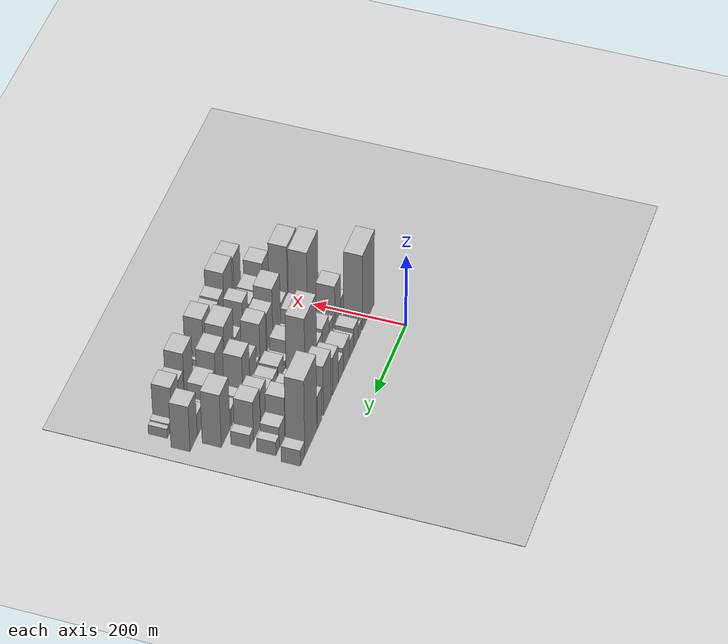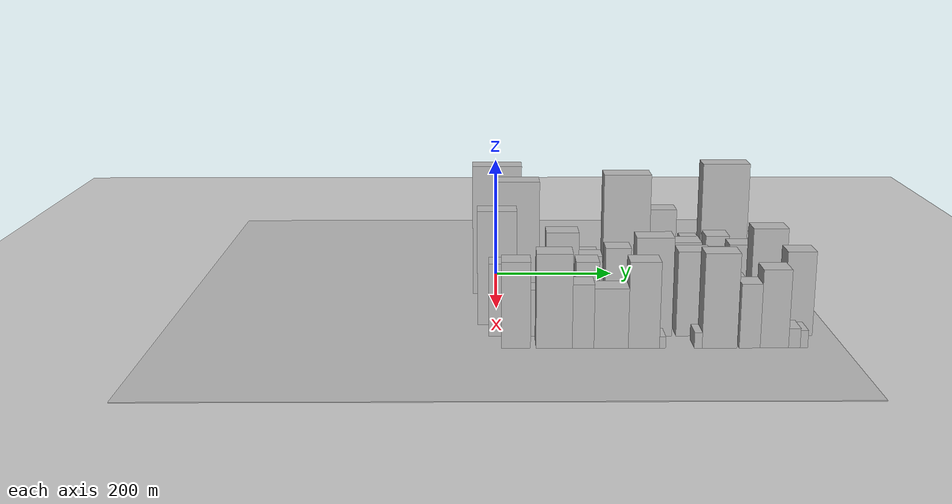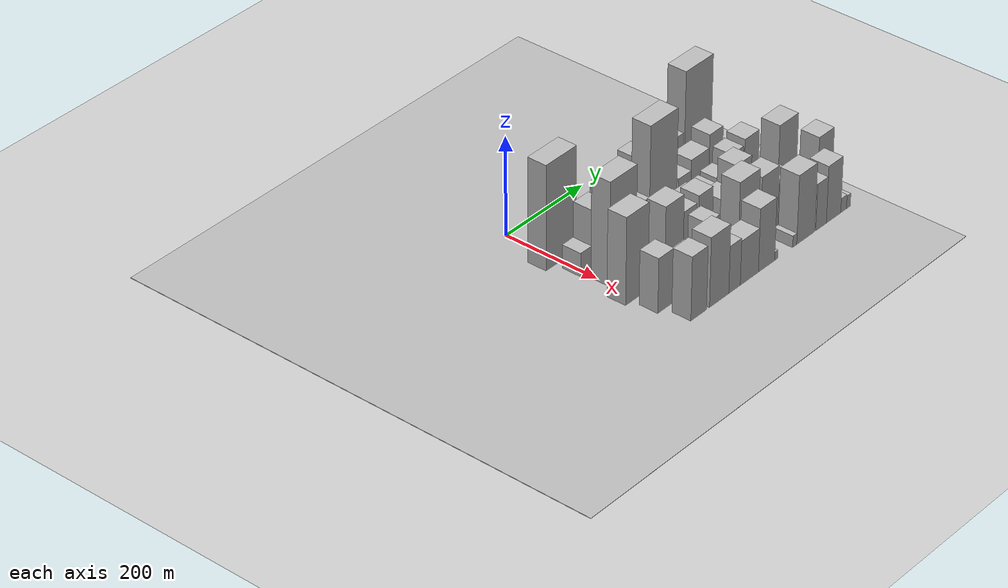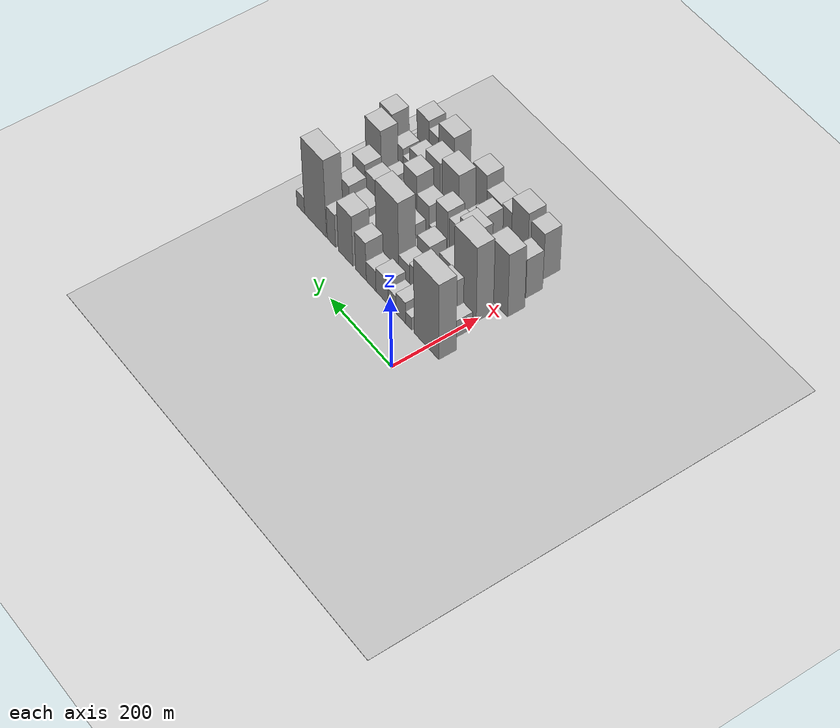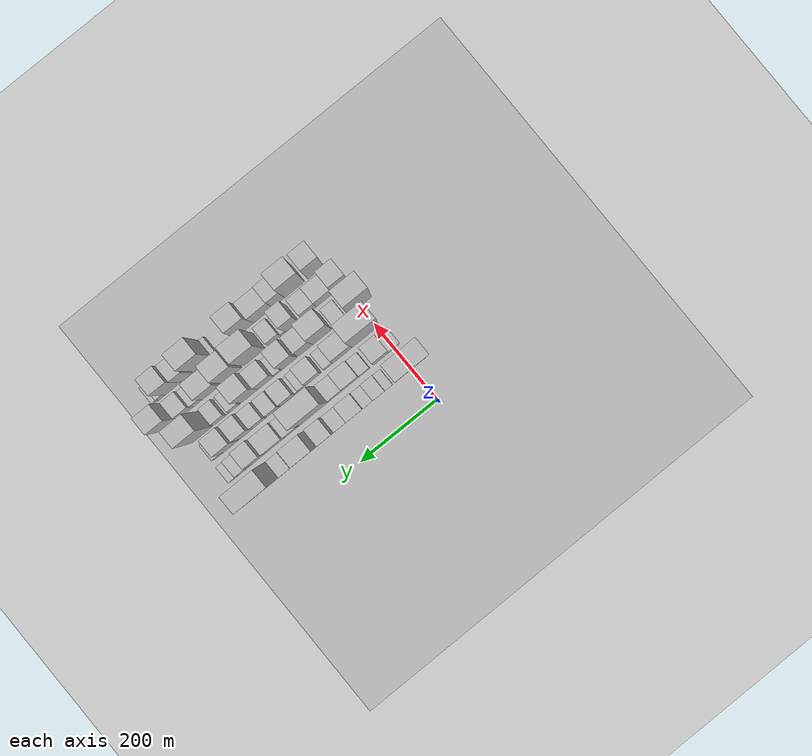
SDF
<sdf version="1.6">
 <world name="default">
  <include><name>ground_plane_1</name><uri>model://HANNAS_ground_plane</uri></include>
  <include>
   <name>ground_plane_2</name>
   <uri>model://HANNAS_ground_plane</uri>
   <pose>100 0 0  0 0 0</pose>
  </include>
  <model name="building_27">
   <static>1</static>
   <pose>100.0000 1.7411 0 0.000000 0.000000 0.000000</pose>
   <link name="link">
    <pose>0 0 106.50 0 0 0</pose>
    <collision name="collision"><geometry><box><size>40.0000 79.1890 213.0000</size></box></geometry></collision>
    <visual name="visual">
     <cast_shadows>0</cast_shadows>
     <geometry><box><size>40.0000 79.1890 213.0000</size></box></geometry>
     <material>
      <script>
       <uri>model://HANNAS_wall/materials/scripts</uri>
       <uri>model://HANNAS_wall/materials/textures</uri>
       <name>vrc/HANNAS_wall</name>
      </script>
     </material>
    </visual>
   </link>
  </model>
  <model name="building_28">
   <static>1</static>
   <pose>100.0000 59.1877 0 0.000000 0.000000 0.000000</pose>
   <link name="link">
    <pose>0 0 18.00 0 0 0</pose>
    <collision name="collision"><geometry><box><size>40.0000 19.7042 36.0000</size></box></geometry></collision>
    <visual name="visual">
     <cast_shadows>0</cast_shadows>
     <geometry><box><size>40.0000 19.7042 36.0000</size></box></geometry>
     <material>
      <script>
       <uri>model://HANNAS_wall/materials/scripts</uri>
       <uri>model://HANNAS_wall/materials/textures</uri>
       <name>vrc/HANNAS_wall</name>
      </script>
     </material>
    </visual>
   </link>
  </model>
  <model name="building_29">
   <static>1</static>
   <pose>100.0000 84.3180 0 0.000000 0.000000 0.000000</pose>
   <link name="link">
    <pose>0 0 30.00 0 0 0</pose>
    <collision name="collision"><geometry><box><size>40.0000 30.5564 60.0000</size></box></geometry></collision>
    <visual name="visual">
     <cast_shadows>0</cast_shadows>
     <geometry><box><size>40.0000 30.5564 60.0000</size></box></geometry>
     <material>
      <script>
       <uri>model://HANNAS_wall/materials/scripts</uri>
       <uri>model://HANNAS_wall/materials/textures</uri>
       <name>vrc/HANNAS_wall</name>
      </script>
     </material>
    </visual>
   </link>
  </model>
  <model name="building_30">
   <static>1</static>
   <pose>100.0000 112.3530 0 0.000000 0.000000 0.000000</pose>
   <link name="link">
    <pose>0 0 24.00 0 0 0</pose>
    <collision name="collision"><geometry><box><size>40.0000 25.5136 48.0000</size></box></geometry></collision>
    <visual name="visual">
     <cast_shadows>0</cast_shadows>
     <geometry><box><size>40.0000 25.5136 48.0000</size></box></geometry>
     <material>
      <script>
       <uri>model://HANNAS_wall/materials/scripts</uri>
       <uri>model://HANNAS_wall/materials/textures</uri>
       <name>vrc/HANNAS_wall</name>
      </script>
     </material>
    </visual>
   </link>
  </model>
  <model name="building_31">
   <static>1</static>
   <pose>100.0000 145.6820 0 0.000000 0.000000 0.000000</pose>
   <link name="link">
    <pose>0 0 34.50 0 0 0</pose>
    <collision name="collision"><geometry><box><size>40.0000 41.1445 69.0000</size></box></geometry></collision>
    <visual name="visual">
     <cast_shadows>0</cast_shadows>
     <geometry><box><size>40.0000 41.1445 69.0000</size></box></geometry>
     <material>
      <script>
       <uri>model://HANNAS_wall/materials/scripts</uri>
       <uri>model://HANNAS_wall/materials/textures</uri>
       <name>vrc/HANNAS_wall</name>
      </script>
     </material>
    </visual>
   </link>
  </model>
  <model name="building_32">
   <static>1</static>
   <pose>100.0000 182.3514 0 0.000000 0.000000 0.000000</pose>
   <link name="link">
    <pose>0 0 28.50 0 0 0</pose>
    <collision name="collision"><geometry><box><size>40.0000 32.1942 57.0000</size></box></geometry></collision>
    <visual name="visual">
     <cast_shadows>0</cast_shadows>
     <geometry><box><size>40.0000 32.1942 57.0000</size></box></geometry>
     <material>
      <script>
       <uri>model://HANNAS_wall/materials/scripts</uri>
       <uri>model://HANNAS_wall/materials/textures</uri>
       <name>vrc/HANNAS_wall</name>
      </script>
     </material>
    </visual>
   </link>
  </model>
  <model name="building_33">
   <static>1</static>
   <pose>100.0000 216.3945 0 0.000000 0.000000 0.000000</pose>
   <link name="link">
    <pose>0 0 54.00 0 0 0</pose>
    <collision name="collision"><geometry><box><size>40.0000 35.8920 108.0000</size></box></geometry></collision>
    <visual name="visual">
     <cast_shadows>0</cast_shadows>
     <geometry><box><size>40.0000 35.8920 108.0000</size></box></geometry>
     <material>
      <script>
       <uri>model://HANNAS_wall/materials/scripts</uri>
       <uri>model://HANNAS_wall/materials/textures</uri>
       <name>vrc/HANNAS_wall</name>
      </script>
     </material>
    </visual>
   </link>
  </model>
  <model name="building_34">
   <static>1</static>
   <pose>100.0000 268.0884 0 0.000000 0.000000 0.000000</pose>
   <link name="link">
    <pose>0 0 70.50 0 0 0</pose>
    <collision name="collision"><geometry><box><size>40.0000 49.4960 141.0000</size></box></geometry></collision>
    <visual name="visual">
     <cast_shadows>0</cast_shadows>
     <geometry><box><size>40.0000 49.4960 141.0000</size></box></geometry>
     <material>
      <script>
       <uri>model://HANNAS_wall/materials/scripts</uri>
       <uri>model://HANNAS_wall/materials/textures</uri>
       <name>vrc/HANNAS_wall</name>
      </script>
     </material>
    </visual>
   </link>
  </model>
  <model name="building_35">
   <static>1</static>
   <pose>100.0000 316.1049 0 0.000000 0.000000 0.000000</pose>
   <link name="link">
    <pose>0 0 46.50 0 0 0</pose>
    <collision name="collision"><geometry><box><size>40.0000 28.5371 93.0000</size></box></geometry></collision>
    <visual name="visual">
     <cast_shadows>0</cast_shadows>
     <geometry><box><size>40.0000 28.5371 93.0000</size></box></geometry>
     <material>
      <script>
       <uri>model://HANNAS_wall/materials/scripts</uri>
       <uri>model://HANNAS_wall/materials/textures</uri>
       <name>vrc/HANNAS_wall</name>
      </script>
     </material>
    </visual>
   </link>
  </model>
  <model name="building_36">
   <static>1</static>
   <pose>100.0000 371.0116 0 0.000000 0.000000 0.000000</pose>
   <link name="link">
    <pose>0 0 108.00 0 0 0</pose>
    <collision name="collision"><geometry><box><size>40.0000 75.2764 216.0000</size></box></geometry></collision>
    <visual name="visual">
     <cast_shadows>0</cast_shadows>
     <geometry><box><size>40.0000 75.2764 216.0000</size></box></geometry>
     <material>
      <script>
       <uri>model://HANNAS_wall/materials/scripts</uri>
       <uri>model://HANNAS_wall/materials/textures</uri>
       <name>vrc/HANNAS_wall</name>
      </script>
     </material>
    </visual>
   </link>
  </model>
  <model name="building_37">
   <static>1</static>
   <pose>100.0000 422.1085 0 0.000000 0.000000 0.000000</pose>
   <link name="link">
    <pose>0 0 22.50 0 0 0</pose>
    <collision name="collision"><geometry><box><size>40.0000 26.9173 45.0000</size></box></geometry></collision>
    <visual name="visual">
     <cast_shadows>0</cast_shadows>
     <geometry><box><size>40.0000 26.9173 45.0000</size></box></geometry>
     <material>
      <script>
       <uri>model://HANNAS_wall/materials/scripts</uri>
       <uri>model://HANNAS_wall/materials/textures</uri>
       <name>vrc/HANNAS_wall</name>
      </script>
     </material>
    </visual>
   </link>
  </model>
  <model name="building_70">
   <static>1</static>
   <pose>155.0000 0.9232 0 0.000000 0.000000 0.000000</pose>
   <link name="link">
    <pose>0 0 24.00 0 0 0</pose>
    <collision name="collision"><geometry><box><size>40.0000 28.6515 48.0000</size></box></geometry></collision>
    <visual name="visual">
     <cast_shadows>0</cast_shadows>
     <geometry><box><size>40.0000 28.6515 48.0000</size></box></geometry>
     <material>
      <script>
       <uri>model://HANNAS_wall/materials/scripts</uri>
       <uri>model://HANNAS_wall/materials/textures</uri>
       <name>vrc/HANNAS_wall</name>
      </script>
     </material>
    </visual>
   </link>
  </model>
  <model name="building_71">
   <static>1</static>
   <pose>155.0000 34.6887 0 0.000000 0.000000 0.000000</pose>
   <link name="link">
    <pose>0 0 60.00 0 0 0</pose>
    <collision name="collision"><geometry><box><size>40.0000 38.8795 120.0000</size></box></geometry></collision>
    <visual name="visual">
     <cast_shadows>0</cast_shadows>
     <geometry><box><size>40.0000 38.8795 120.0000</size></box></geometry>
     <material>
      <script>
       <uri>model://HANNAS_wall/materials/scripts</uri>
       <uri>model://HANNAS_wall/materials/textures</uri>
       <name>vrc/HANNAS_wall</name>
      </script>
     </material>
    </visual>
   </link>
  </model>
  <model name="building_72">
   <static>1</static>
   <pose>155.0000 77.8346 0 0.000000 0.000000 0.000000</pose>
   <link name="link">
    <pose>0 0 24.00 0 0 0</pose>
    <collision name="collision"><geometry><box><size>40.0000 27.4123 48.0000</size></box></geometry></collision>
    <visual name="visual">
     <cast_shadows>0</cast_shadows>
     <geometry><box><size>40.0000 27.4123 48.0000</size></box></geometry>
     <material>
      <script>
       <uri>model://HANNAS_wall/materials/scripts</uri>
       <uri>model://HANNAS_wall/materials/textures</uri>
       <name>vrc/HANNAS_wall</name>
      </script>
     </material>
    </visual>
   </link>
  </model>
  <model name="building_73">
   <static>1</static>
   <pose>155.0000 112.9033 0 0.000000 0.000000 0.000000</pose>
   <link name="link">
    <pose>0 0 37.50 0 0 0</pose>
    <collision name="collision"><geometry><box><size>40.0000 42.7249 75.0000</size></box></geometry></collision>
    <visual name="visual">
     <cast_shadows>0</cast_shadows>
     <geometry><box><size>40.0000 42.7249 75.0000</size></box></geometry>
     <material>
      <script>
       <uri>model://HANNAS_wall/materials/scripts</uri>
       <uri>model://HANNAS_wall/materials/textures</uri>
       <name>vrc/HANNAS_wall</name>
      </script>
     </material>
    </visual>
   </link>
  </model>
  <model name="building_74">
   <static>1</static>
   <pose>155.0000 151.8235 0 0.000000 0.000000 0.000000</pose>
   <link name="link">
    <pose>0 0 33.00 0 0 0</pose>
    <collision name="collision"><geometry><box><size>40.0000 35.1155 66.0000</size></box></geometry></collision>
    <visual name="visual">
     <cast_shadows>0</cast_shadows>
     <geometry><box><size>40.0000 35.1155 66.0000</size></box></geometry>
     <material>
      <script>
       <uri>model://HANNAS_wall/materials/scripts</uri>
       <uri>model://HANNAS_wall/materials/textures</uri>
       <name>vrc/HANNAS_wall</name>
      </script>
     </material>
    </visual>
   </link>
  </model>
  <model name="building_75">
   <static>1</static>
   <pose>155.0000 206.3049 0 0.000000 0.000000 0.000000</pose>
   <link name="link">
    <pose>0 0 105.00 0 0 0</pose>
    <collision name="collision"><geometry><box><size>40.0000 73.8473 210.0000</size></box></geometry></collision>
    <visual name="visual">
     <cast_shadows>0</cast_shadows>
     <geometry><box><size>40.0000 73.8473 210.0000</size></box></geometry>
     <material>
      <script>
       <uri>model://HANNAS_wall/materials/scripts</uri>
       <uri>model://HANNAS_wall/materials/textures</uri>
       <name>vrc/HANNAS_wall</name>
      </script>
     </material>
    </visual>
   </link>
  </model>
  <model name="building_76">
   <static>1</static>
   <pose>155.0000 265.4302 0 0.000000 0.000000 0.000000</pose>
   <link name="link">
    <pose>0 0 31.50 0 0 0</pose>
    <collision name="collision"><geometry><box><size>40.0000 34.4033 63.0000</size></box></geometry></collision>
    <visual name="visual">
     <cast_shadows>0</cast_shadows>
     <geometry><box><size>40.0000 34.4033 63.0000</size></box></geometry>
     <material>
      <script>
       <uri>model://HANNAS_wall/materials/scripts</uri>
       <uri>model://HANNAS_wall/materials/textures</uri>
       <name>vrc/HANNAS_wall</name>
      </script>
     </material>
    </visual>
   </link>
  </model>
  <model name="building_77">
   <static>1</static>
   <pose>155.0000 307.5414 0 0.000000 0.000000 0.000000</pose>
   <link name="link">
    <pose>0 0 42.00 0 0 0</pose>
    <collision name="collision"><geometry><box><size>40.0000 49.8191 84.0000</size></box></geometry></collision>
    <visual name="visual">
     <cast_shadows>0</cast_shadows>
     <geometry><box><size>40.0000 49.8191 84.0000</size></box></geometry>
     <material>
      <script>
       <uri>model://HANNAS_wall/materials/scripts</uri>
       <uri>model://HANNAS_wall/materials/textures</uri>
       <name>vrc/HANNAS_wall</name>
      </script>
     </material>
    </visual>
   </link>
  </model>
  <model name="building_78">
   <static>1</static>
   <pose>155.0000 351.1205 0 0.000000 0.000000 0.000000</pose>
   <link name="link">
    <pose>0 0 55.50 0 0 0</pose>
    <collision name="collision"><geometry><box><size>40.0000 37.3392 111.0000</size></box></geometry></collision>
    <visual name="visual">
     <cast_shadows>0</cast_shadows>
     <geometry><box><size>40.0000 37.3392 111.0000</size></box></geometry>
     <material>
      <script>
       <uri>model://HANNAS_wall/materials/scripts</uri>
       <uri>model://HANNAS_wall/materials/textures</uri>
       <name>vrc/HANNAS_wall</name>
      </script>
     </material>
    </visual>
   </link>
  </model>
  <model name="building_79">
   <static>1</static>
   <pose>155.0000 386.5733 0 0.000000 0.000000 0.000000</pose>
   <link name="link">
    <pose>0 0 30.00 0 0 0</pose>
    <collision name="collision"><geometry><box><size>40.0000 33.5663 60.0000</size></box></geometry></collision>
    <visual name="visual">
     <cast_shadows>0</cast_shadows>
     <geometry><box><size>40.0000 33.5663 60.0000</size></box></geometry>
     <material>
      <script>
       <uri>model://HANNAS_wall/materials/scripts</uri>
       <uri>model://HANNAS_wall/materials/textures</uri>
       <name>vrc/HANNAS_wall</name>
      </script>
     </material>
    </visual>
   </link>
  </model>
  <model name="building_80">
   <static>1</static>
   <pose>155.0000 413.7066 0 0.000000 0.000000 0.000000</pose>
   <link name="link">
    <pose>0 0 19.50 0 0 0</pose>
    <collision name="collision"><geometry><box><size>40.0000 20.7002 39.0000</size></box></geometry></collision>
    <visual name="visual">
     <cast_shadows>0</cast_shadows>
     <geometry><box><size>40.0000 20.7002 39.0000</size></box></geometry>
     <material>
      <script>
       <uri>model://HANNAS_wall/materials/scripts</uri>
       <uri>model://HANNAS_wall/materials/textures</uri>
       <name>vrc/HANNAS_wall</name>
      </script>
     </material>
    </visual>
   </link>
  </model>
  <model name="building_111">
   <static>1</static>
   <pose>210.0000 30.6626 0 0.000000 0.000000 0.000000</pose>
   <link name="link">
    <pose>0 0 105.00 0 0 0</pose>
    <collision name="collision"><geometry><box><size>40.0000 70.2374 210.0000</size></box></geometry></collision>
    <visual name="visual">
     <cast_shadows>0</cast_shadows>
     <geometry><box><size>40.0000 70.2374 210.0000</size></box></geometry>
     <material>
      <script>
       <uri>model://HANNAS_wall/materials/scripts</uri>
       <uri>model://HANNAS_wall/materials/textures</uri>
       <name>vrc/HANNAS_wall</name>
      </script>
     </material>
    </visual>
   </link>
  </model>
  <model name="building_112">
   <static>1</static>
   <pose>210.0000 90.0751 0 0.000000 0.000000 0.000000</pose>
   <link name="link">
    <pose>0 0 43.50 0 0 0</pose>
    <collision name="collision"><geometry><box><size>40.0000 48.5874 87.0000</size></box></geometry></collision>
    <visual name="visual">
     <cast_shadows>0</cast_shadows>
     <geometry><box><size>40.0000 48.5874 87.0000</size></box></geometry>
     <material>
      <script>
       <uri>model://HANNAS_wall/materials/scripts</uri>
       <uri>model://HANNAS_wall/materials/textures</uri>
       <name>vrc/HANNAS_wall</name>
      </script>
     </material>
    </visual>
   </link>
  </model>
  <model name="building_113">
   <static>1</static>
   <pose>210.0000 125.8978 0 0.000000 0.000000 0.000000</pose>
   <link name="link">
    <pose>0 0 22.50 0 0 0</pose>
    <collision name="collision"><geometry><box><size>40.0000 23.0580 45.0000</size></box></geometry></collision>
    <visual name="visual">
     <cast_shadows>0</cast_shadows>
     <geometry><box><size>40.0000 23.0580 45.0000</size></box></geometry>
     <material>
      <script>
       <uri>model://HANNAS_wall/materials/scripts</uri>
       <uri>model://HANNAS_wall/materials/textures</uri>
       <name>vrc/HANNAS_wall</name>
      </script>
     </material>
    </visual>
   </link>
  </model>
  <model name="building_114">
   <static>1</static>
   <pose>210.0000 165.1121 0 0.000000 0.000000 0.000000</pose>
   <link name="link">
    <pose>0 0 36.00 0 0 0</pose>
    <collision name="collision"><geometry><box><size>40.0000 39.3707 72.0000</size></box></geometry></collision>
    <visual name="visual">
     <cast_shadows>0</cast_shadows>
     <geometry><box><size>40.0000 39.3707 72.0000</size></box></geometry>
     <material>
      <script>
       <uri>model://HANNAS_wall/materials/scripts</uri>
       <uri>model://HANNAS_wall/materials/textures</uri>
       <name>vrc/HANNAS_wall</name>
      </script>
     </material>
    </visual>
   </link>
  </model>
  <model name="building_115">
   <static>1</static>
   <pose>210.0000 194.7922 0 0.000000 0.000000 0.000000</pose>
   <link name="link">
    <pose>0 0 18.00 0 0 0</pose>
    <collision name="collision"><geometry><box><size>40.0000 19.9895 36.0000</size></box></geometry></collision>
    <visual name="visual">
     <cast_shadows>0</cast_shadows>
     <geometry><box><size>40.0000 19.9895 36.0000</size></box></geometry>
     <material>
      <script>
       <uri>model://HANNAS_wall/materials/scripts</uri>
       <uri>model://HANNAS_wall/materials/textures</uri>
       <name>vrc/HANNAS_wall</name>
      </script>
     </material>
    </visual>
   </link>
  </model>
  <model name="building_116">
   <static>1</static>
   <pose>210.0000 209.4446 0 0.000000 0.000000 0.000000</pose>
   <link name="link">
    <pose>0 0 10.50 0 0 0</pose>
    <collision name="collision"><geometry><box><size>40.0000 9.3152 21.0000</size></box></geometry></collision>
    <visual name="visual">
     <cast_shadows>0</cast_shadows>
     <geometry><box><size>40.0000 9.3152 21.0000</size></box></geometry>
     <material>
      <script>
       <uri>model://HANNAS_wall/materials/scripts</uri>
       <uri>model://HANNAS_wall/materials/textures</uri>
       <name>vrc/HANNAS_wall</name>
      </script>
     </material>
    </visual>
   </link>
  </model>
  <model name="building_117">
   <static>1</static>
   <pose>210.0000 232.1409 0 0.000000 0.000000 0.000000</pose>
   <link name="link">
    <pose>0 0 31.50 0 0 0</pose>
    <collision name="collision"><geometry><box><size>40.0000 36.0774 63.0000</size></box></geometry></collision>
    <visual name="visual">
     <cast_shadows>0</cast_shadows>
     <geometry><box><size>40.0000 36.0774 63.0000</size></box></geometry>
     <material>
      <script>
       <uri>model://HANNAS_wall/materials/scripts</uri>
       <uri>model://HANNAS_wall/materials/textures</uri>
       <name>vrc/HANNAS_wall</name>
      </script>
     </material>
    </visual>
   </link>
  </model>
  <model name="building_118">
   <static>1</static>
   <pose>210.0000 268.5732 0 0.000000 0.000000 0.000000</pose>
   <link name="link">
    <pose>0 0 30.00 0 0 0</pose>
    <collision name="collision"><geometry><box><size>40.0000 30.7871 60.0000</size></box></geometry></collision>
    <visual name="visual">
     <cast_shadows>0</cast_shadows>
     <geometry><box><size>40.0000 30.7871 60.0000</size></box></geometry>
     <material>
      <script>
       <uri>model://HANNAS_wall/materials/scripts</uri>
       <uri>model://HANNAS_wall/materials/textures</uri>
       <name>vrc/HANNAS_wall</name>
      </script>
     </material>
    </visual>
   </link>
  </model>
  <model name="building_119">
   <static>1</static>
   <pose>210.0000 305.0433 0 0.000000 0.000000 0.000000</pose>
   <link name="link">
    <pose>0 0 33.00 0 0 0</pose>
    <collision name="collision"><geometry><box><size>40.0000 34.1532 66.0000</size></box></geometry></collision>
    <visual name="visual">
     <cast_shadows>0</cast_shadows>
     <geometry><box><size>40.0000 34.1532 66.0000</size></box></geometry>
     <material>
      <script>
       <uri>model://HANNAS_wall/materials/scripts</uri>
       <uri>model://HANNAS_wall/materials/textures</uri>
       <name>vrc/HANNAS_wall</name>
      </script>
     </material>
    </visual>
   </link>
  </model>
  <model name="building_120">
   <static>1</static>
   <pose>210.0000 339.5758 0 0.000000 0.000000 0.000000</pose>
   <link name="link">
    <pose>0 0 49.50 0 0 0</pose>
    <collision name="collision"><geometry><box><size>40.0000 34.9117 99.0000</size></box></geometry></collision>
    <visual name="visual">
     <cast_shadows>0</cast_shadows>
     <geometry><box><size>40.0000 34.9117 99.0000</size></box></geometry>
     <material>
      <script>
       <uri>model://HANNAS_wall/materials/scripts</uri>
       <uri>model://HANNAS_wall/materials/textures</uri>
       <name>vrc/HANNAS_wall</name>
      </script>
     </material>
    </visual>
   </link>
  </model>
  <model name="building_121">
   <static>1</static>
   <pose>210.0000 380.2811 0 0.000000 0.000000 0.000000</pose>
   <link name="link">
    <pose>0 0 55.50 0 0 0</pose>
    <collision name="collision"><geometry><box><size>40.0000 40.4990 111.0000</size></box></geometry></collision>
    <visual name="visual">
     <cast_shadows>0</cast_shadows>
     <geometry><box><size>40.0000 40.4990 111.0000</size></box></geometry>
     <material>
      <script>
       <uri>model://HANNAS_wall/materials/scripts</uri>
       <uri>model://HANNAS_wall/materials/textures</uri>
       <name>vrc/HANNAS_wall</name>
      </script>
     </material>
    </visual>
   </link>
  </model>
  <model name="building_122">
   <static>1</static>
   <pose>210.0000 411.4203 0 0.000000 0.000000 0.000000</pose>
   <link name="link">
    <pose>0 0 19.50 0 0 0</pose>
    <collision name="collision"><geometry><box><size>40.0000 21.7795 39.0000</size></box></geometry></collision>
    <visual name="visual">
     <cast_shadows>0</cast_shadows>
     <geometry><box><size>40.0000 21.7795 39.0000</size></box></geometry>
     <material>
      <script>
       <uri>model://HANNAS_wall/materials/scripts</uri>
       <uri>model://HANNAS_wall/materials/textures</uri>
       <name>vrc/HANNAS_wall</name>
      </script>
     </material>
    </visual>
   </link>
  </model>
  <model name="building_159">
   <static>1</static>
   <pose>265.0000 0.3186 0 0.000000 0.000000 0.000000</pose>
   <link name="link">
    <pose>0 0 88.50 0 0 0</pose>
    <collision name="collision"><geometry><box><size>40.0000 59.0719 177.0000</size></box></geometry></collision>
    <visual name="visual">
     <cast_shadows>0</cast_shadows>
     <geometry><box><size>40.0000 59.0719 177.0000</size></box></geometry>
     <material>
      <script>
       <uri>model://HANNAS_wall/materials/scripts</uri>
       <uri>model://HANNAS_wall/materials/textures</uri>
       <name>vrc/HANNAS_wall</name>
      </script>
     </material>
    </visual>
   </link>
  </model>
  <model name="building_160">
   <static>1</static>
   <pose>265.0000 52.0331 0 0.000000 0.000000 0.000000</pose>
   <link name="link">
    <pose>0 0 27.00 0 0 0</pose>
    <collision name="collision"><geometry><box><size>40.0000 32.3572 54.0000</size></box></geometry></collision>
    <visual name="visual">
     <cast_shadows>0</cast_shadows>
     <geometry><box><size>40.0000 32.3572 54.0000</size></box></geometry>
     <material>
      <script>
       <uri>model://HANNAS_wall/materials/scripts</uri>
       <uri>model://HANNAS_wall/materials/textures</uri>
       <name>vrc/HANNAS_wall</name>
      </script>
     </material>
    </visual>
   </link>
  </model>
  <model name="building_161">
   <static>1</static>
   <pose>265.0000 98.6570 0 0.000000 0.000000 0.000000</pose>
   <link name="link">
    <pose>0 0 72.00 0 0 0</pose>
    <collision name="collision"><geometry><box><size>40.0000 48.8905 144.0000</size></box></geometry></collision>
    <visual name="visual">
     <cast_shadows>0</cast_shadows>
     <geometry><box><size>40.0000 48.8905 144.0000</size></box></geometry>
     <material>
      <script>
       <uri>model://HANNAS_wall/materials/scripts</uri>
       <uri>model://HANNAS_wall/materials/textures</uri>
       <name>vrc/HANNAS_wall</name>
      </script>
     </material>
    </visual>
   </link>
  </model>
  <model name="building_162">
   <static>1</static>
   <pose>265.0000 140.8439 0 0.000000 0.000000 0.000000</pose>
   <link name="link">
    <pose>0 0 54.00 0 0 0</pose>
    <collision name="collision"><geometry><box><size>40.0000 35.4834 108.0000</size></box></geometry></collision>
    <visual name="visual">
     <cast_shadows>0</cast_shadows>
     <geometry><box><size>40.0000 35.4834 108.0000</size></box></geometry>
     <material>
      <script>
       <uri>model://HANNAS_wall/materials/scripts</uri>
       <uri>model://HANNAS_wall/materials/textures</uri>
       <name>vrc/HANNAS_wall</name>
      </script>
     </material>
    </visual>
   </link>
  </model>
  <model name="building_163">
   <static>1</static>
   <pose>265.0000 182.7472 0 0.000000 0.000000 0.000000</pose>
   <link name="link">
    <pose>0 0 60.00 0 0 0</pose>
    <collision name="collision"><geometry><box><size>40.0000 38.3232 120.0000</size></box></geometry></collision>
    <visual name="visual">
     <cast_shadows>0</cast_shadows>
     <geometry><box><size>40.0000 38.3232 120.0000</size></box></geometry>
     <material>
      <script>
       <uri>model://HANNAS_wall/materials/scripts</uri>
       <uri>model://HANNAS_wall/materials/textures</uri>
       <name>vrc/HANNAS_wall</name>
      </script>
     </material>
    </visual>
   </link>
  </model>
  <model name="building_164">
   <static>1</static>
   <pose>265.0000 214.8915 0 0.000000 0.000000 0.000000</pose>
   <link name="link">
    <pose>0 0 15.00 0 0 0</pose>
    <collision name="collision"><geometry><box><size>40.0000 17.9654 30.0000</size></box></geometry></collision>
    <visual name="visual">
     <cast_shadows>0</cast_shadows>
     <geometry><box><size>40.0000 17.9654 30.0000</size></box></geometry>
     <material>
      <script>
       <uri>model://HANNAS_wall/materials/scripts</uri>
       <uri>model://HANNAS_wall/materials/textures</uri>
       <name>vrc/HANNAS_wall</name>
      </script>
     </material>
    </visual>
   </link>
  </model>
  <model name="building_165">
   <static>1</static>
   <pose>265.0000 244.1749 0 0.000000 0.000000 0.000000</pose>
   <link name="link">
    <pose>0 0 40.50 0 0 0</pose>
    <collision name="collision"><geometry><box><size>40.0000 40.6014 81.0000</size></box></geometry></collision>
    <visual name="visual">
     <cast_shadows>0</cast_shadows>
     <geometry><box><size>40.0000 40.6014 81.0000</size></box></geometry>
     <material>
      <script>
       <uri>model://HANNAS_wall/materials/scripts</uri>
       <uri>model://HANNAS_wall/materials/textures</uri>
       <name>vrc/HANNAS_wall</name>
      </script>
     </material>
    </visual>
   </link>
  </model>
  <model name="building_166">
   <static>1</static>
   <pose>265.0000 285.8399 0 0.000000 0.000000 0.000000</pose>
   <link name="link">
    <pose>0 0 64.50 0 0 0</pose>
    <collision name="collision"><geometry><box><size>40.0000 42.7286 129.0000</size></box></geometry></collision>
    <visual name="visual">
     <cast_shadows>0</cast_shadows>
     <geometry><box><size>40.0000 42.7286 129.0000</size></box></geometry>
     <material>
      <script>
       <uri>model://HANNAS_wall/materials/scripts</uri>
       <uri>model://HANNAS_wall/materials/textures</uri>
       <name>vrc/HANNAS_wall</name>
      </script>
     </material>
    </visual>
   </link>
  </model>
  <model name="building_167">
   <static>1</static>
   <pose>265.0000 325.0403 0 0.000000 0.000000 0.000000</pose>
   <link name="link">
    <pose>0 0 22.50 0 0 0</pose>
    <collision name="collision"><geometry><box><size>40.0000 25.6722 45.0000</size></box></geometry></collision>
    <visual name="visual">
     <cast_shadows>0</cast_shadows>
     <geometry><box><size>40.0000 25.6722 45.0000</size></box></geometry>
     <material>
      <script>
       <uri>model://HANNAS_wall/materials/scripts</uri>
       <uri>model://HANNAS_wall/materials/textures</uri>
       <name>vrc/HANNAS_wall</name>
      </script>
     </material>
    </visual>
   </link>
  </model>
  <model name="building_168">
   <static>1</static>
   <pose>265.0000 342.3450 0 0.000000 0.000000 0.000000</pose>
   <link name="link">
    <pose>0 0 10.50 0 0 0</pose>
    <collision name="collision"><geometry><box><size>40.0000 8.9372 21.0000</size></box></geometry></collision>
    <visual name="visual">
     <cast_shadows>0</cast_shadows>
     <geometry><box><size>40.0000 8.9372 21.0000</size></box></geometry>
     <material>
      <script>
       <uri>model://HANNAS_wall/materials/scripts</uri>
       <uri>model://HANNAS_wall/materials/textures</uri>
       <name>vrc/HANNAS_wall</name>
      </script>
     </material>
    </visual>
   </link>
  </model>
  <model name="building_169">
   <static>1</static>
   <pose>265.0000 362.0525 0 0.000000 0.000000 0.000000</pose>
   <link name="link">
    <pose>0 0 25.50 0 0 0</pose>
    <collision name="collision"><geometry><box><size>40.0000 30.4777 51.0000</size></box></geometry></collision>
    <visual name="visual">
     <cast_shadows>0</cast_shadows>
     <geometry><box><size>40.0000 30.4777 51.0000</size></box></geometry>
     <material>
      <script>
       <uri>model://HANNAS_wall/materials/scripts</uri>
       <uri>model://HANNAS_wall/materials/textures</uri>
       <name>vrc/HANNAS_wall</name>
      </script>
     </material>
    </visual>
   </link>
  </model>
  <model name="building_170">
   <static>1</static>
   <pose>265.0000 410.5787 0 0.000000 0.000000 0.000000</pose>
   <link name="link">
    <pose>0 0 75.00 0 0 0</pose>
    <collision name="collision"><geometry><box><size>40.0000 52.5747 150.0000</size></box></geometry></collision>
    <visual name="visual">
     <cast_shadows>0</cast_shadows>
     <geometry><box><size>40.0000 52.5747 150.0000</size></box></geometry>
     <material>
      <script>
       <uri>model://HANNAS_wall/materials/scripts</uri>
       <uri>model://HANNAS_wall/materials/textures</uri>
       <name>vrc/HANNAS_wall</name>
      </script>
     </material>
    </visual>
   </link>
  </model>
  <model name="building_212">
   <static>1</static>
   <pose>320.0000 7.8387 0 0.000000 0.000000 0.000000</pose>
   <link name="link">
    <pose>0 0 55.50 0 0 0</pose>
    <collision name="collision"><geometry><box><size>40.0000 40.4233 111.0000</size></box></geometry></collision>
    <visual name="visual">
     <cast_shadows>0</cast_shadows>
     <geometry><box><size>40.0000 40.4233 111.0000</size></box></geometry>
     <material>
      <script>
       <uri>model://HANNAS_wall/materials/scripts</uri>
       <uri>model://HANNAS_wall/materials/textures</uri>
       <name>vrc/HANNAS_wall</name>
      </script>
     </material>
    </visual>
   </link>
  </model>
  <model name="building_213">
   <static>1</static>
   <pose>320.0000 48.9447 0 0.000000 0.000000 0.000000</pose>
   <link name="link">
    <pose>0 0 36.00 0 0 0</pose>
    <collision name="collision"><geometry><box><size>40.0000 41.7887 72.0000</size></box></geometry></collision>
    <visual name="visual">
     <cast_shadows>0</cast_shadows>
     <geometry><box><size>40.0000 41.7887 72.0000</size></box></geometry>
     <material>
      <script>
       <uri>model://HANNAS_wall/materials/scripts</uri>
       <uri>model://HANNAS_wall/materials/textures</uri>
       <name>vrc/HANNAS_wall</name>
      </script>
     </material>
    </visual>
   </link>
  </model>
  <model name="building_214">
   <static>1</static>
   <pose>320.0000 88.1463 0 0.000000 0.000000 0.000000</pose>
   <link name="link">
    <pose>0 0 34.50 0 0 0</pose>
    <collision name="collision"><geometry><box><size>40.0000 36.6144 69.0000</size></box></geometry></collision>
    <visual name="visual">
     <cast_shadows>0</cast_shadows>
     <geometry><box><size>40.0000 36.6144 69.0000</size></box></geometry>
     <material>
      <script>
       <uri>model://HANNAS_wall/materials/scripts</uri>
       <uri>model://HANNAS_wall/materials/textures</uri>
       <name>vrc/HANNAS_wall</name>
      </script>
     </material>
    </visual>
   </link>
  </model>
  <model name="building_215">
   <static>1</static>
   <pose>320.0000 132.5795 0 0.000000 0.000000 0.000000</pose>
   <link name="link">
    <pose>0 0 57.00 0 0 0</pose>
    <collision name="collision"><geometry><box><size>40.0000 34.2521 114.0000</size></box></geometry></collision>
    <visual name="visual">
     <cast_shadows>0</cast_shadows>
     <geometry><box><size>40.0000 34.2521 114.0000</size></box></geometry>
     <material>
      <script>
       <uri>model://HANNAS_wall/materials/scripts</uri>
       <uri>model://HANNAS_wall/materials/textures</uri>
       <name>vrc/HANNAS_wall</name>
      </script>
     </material>
    </visual>
   </link>
  </model>
  <model name="building_216">
   <static>1</static>
   <pose>320.0000 155.6517 0 0.000000 0.000000 0.000000</pose>
   <link name="link">
    <pose>0 0 12.00 0 0 0</pose>
    <collision name="collision"><geometry><box><size>40.0000 11.8923 24.0000</size></box></geometry></collision>
    <visual name="visual">
     <cast_shadows>0</cast_shadows>
     <geometry><box><size>40.0000 11.8923 24.0000</size></box></geometry>
     <material>
      <script>
       <uri>model://HANNAS_wall/materials/scripts</uri>
       <uri>model://HANNAS_wall/materials/textures</uri>
       <name>vrc/HANNAS_wall</name>
      </script>
     </material>
    </visual>
   </link>
  </model>
  <model name="building_217">
   <static>1</static>
   <pose>320.0000 177.4455 0 0.000000 0.000000 0.000000</pose>
   <link name="link">
    <pose>0 0 28.50 0 0 0</pose>
    <collision name="collision"><geometry><box><size>40.0000 31.6954 57.0000</size></box></geometry></collision>
    <visual name="visual">
     <cast_shadows>0</cast_shadows>
     <geometry><box><size>40.0000 31.6954 57.0000</size></box></geometry>
     <material>
      <script>
       <uri>model://HANNAS_wall/materials/scripts</uri>
       <uri>model://HANNAS_wall/materials/textures</uri>
       <name>vrc/HANNAS_wall</name>
      </script>
     </material>
    </visual>
   </link>
  </model>
  <model name="building_218">
   <static>1</static>
   <pose>320.0000 230.8989 0 0.000000 0.000000 0.000000</pose>
   <link name="link">
    <pose>0 0 75.00 0 0 0</pose>
    <collision name="collision"><geometry><box><size>40.0000 55.2113 150.0000</size></box></geometry></collision>
    <visual name="visual">
     <cast_shadows>0</cast_shadows>
     <geometry><box><size>40.0000 55.2113 150.0000</size></box></geometry>
     <material>
      <script>
       <uri>model://HANNAS_wall/materials/scripts</uri>
       <uri>model://HANNAS_wall/materials/textures</uri>
       <name>vrc/HANNAS_wall</name>
      </script>
     </material>
    </visual>
   </link>
  </model>
  <model name="building_219">
   <static>1</static>
   <pose>320.0000 288.6685 0 0.000000 0.000000 0.000000</pose>
   <link name="link">
    <pose>0 0 64.50 0 0 0</pose>
    <collision name="collision"><geometry><box><size>40.0000 48.3278 129.0000</size></box></geometry></collision>
    <visual name="visual">
     <cast_shadows>0</cast_shadows>
     <geometry><box><size>40.0000 48.3278 129.0000</size></box></geometry>
     <material>
      <script>
       <uri>model://HANNAS_wall/materials/scripts</uri>
       <uri>model://HANNAS_wall/materials/textures</uri>
       <name>vrc/HANNAS_wall</name>
      </script>
     </material>
    </visual>
   </link>
  </model>
  <model name="building_220">
   <static>1</static>
   <pose>320.0000 342.6260 0 0.000000 0.000000 0.000000</pose>
   <link name="link">
    <pose>0 0 43.50 0 0 0</pose>
    <collision name="collision"><geometry><box><size>40.0000 47.5872 87.0000</size></box></geometry></collision>
    <visual name="visual">
     <cast_shadows>0</cast_shadows>
     <geometry><box><size>40.0000 47.5872 87.0000</size></box></geometry>
     <material>
      <script>
       <uri>model://HANNAS_wall/materials/scripts</uri>
       <uri>model://HANNAS_wall/materials/textures</uri>
       <name>vrc/HANNAS_wall</name>
      </script>
     </material>
    </visual>
   </link>
  </model>
  <model name="building_221">
   <static>1</static>
   <pose>320.0000 377.7311 0 0.000000 0.000000 0.000000</pose>
   <link name="link">
    <pose>0 0 22.50 0 0 0</pose>
    <collision name="collision"><geometry><box><size>40.0000 22.6231 45.0000</size></box></geometry></collision>
    <visual name="visual">
     <cast_shadows>0</cast_shadows>
     <geometry><box><size>40.0000 22.6231 45.0000</size></box></geometry>
     <material>
      <script>
       <uri>model://HANNAS_wall/materials/scripts</uri>
       <uri>model://HANNAS_wall/materials/textures</uri>
       <name>vrc/HANNAS_wall</name>
      </script>
     </material>
    </visual>
   </link>
  </model>
  <model name="building_222">
   <static>1</static>
   <pose>320.0000 406.6513 0 0.000000 0.000000 0.000000</pose>
   <link name="link">
    <pose>0 0 31.50 0 0 0</pose>
    <collision name="collision"><geometry><box><size>40.0000 35.2171 63.0000</size></box></geometry></collision>
    <visual name="visual">
     <cast_shadows>0</cast_shadows>
     <geometry><box><size>40.0000 35.2171 63.0000</size></box></geometry>
     <material>
      <script>
       <uri>model://HANNAS_wall/materials/scripts</uri>
       <uri>model://HANNAS_wall/materials/textures</uri>
       <name>vrc/HANNAS_wall</name>
      </script>
     </material>
    </visual>
   </link>
  </model>
  <model name="building_223">
   <static>1</static>
   <pose>320.0000 445.4462 0 0.000000 0.000000 0.000000</pose>
   <link name="link">
    <pose>0 0 64.50 0 0 0</pose>
    <collision name="collision"><geometry><box><size>40.0000 42.3727 129.0000</size></box></geometry></collision>
    <visual name="visual">
     <cast_shadows>0</cast_shadows>
     <geometry><box><size>40.0000 42.3727 129.0000</size></box></geometry>
     <material>
      <script>
       <uri>model://HANNAS_wall/materials/scripts</uri>
       <uri>model://HANNAS_wall/materials/textures</uri>
       <name>vrc/HANNAS_wall</name>
      </script>
     </material>
    </visual>
   </link>
  </model>
  <model name="building_260">
   <static>1</static>
   <pose>375.0000 26.7821 0 0.000000 0.000000 0.000000</pose>
   <link name="link">
    <pose>0 0 64.50 0 0 0</pose>
    <collision name="collision"><geometry><box><size>40.0000 41.5907 129.0000</size></box></geometry></collision>
    <visual name="visual">
     <cast_shadows>0</cast_shadows>
     <geometry><box><size>40.0000 41.5907 129.0000</size></box></geometry>
     <material>
      <script>
       <uri>model://HANNAS_wall/materials/scripts</uri>
       <uri>model://HANNAS_wall/materials/textures</uri>
       <name>vrc/HANNAS_wall</name>
      </script>
     </material>
    </visual>
   </link>
  </model>
  <model name="building_261">
   <static>1</static>
   <pose>375.0000 81.5983 0 0.000000 0.000000 0.000000</pose>
   <link name="link">
    <pose>0 0 70.50 0 0 0</pose>
    <collision name="collision"><geometry><box><size>40.0000 52.0417 141.0000</size></box></geometry></collision>
    <visual name="visual">
     <cast_shadows>0</cast_shadows>
     <geometry><box><size>40.0000 52.0417 141.0000</size></box></geometry>
     <material>
      <script>
       <uri>model://HANNAS_wall/materials/scripts</uri>
       <uri>model://HANNAS_wall/materials/textures</uri>
       <name>vrc/HANNAS_wall</name>
      </script>
     </material>
    </visual>
   </link>
  </model>
  <model name="building_262">
   <static>1</static>
   <pose>375.0000 123.1812 0 0.000000 0.000000 0.000000</pose>
   <link name="link">
    <pose>0 0 48.00 0 0 0</pose>
    <collision name="collision"><geometry><box><size>40.0000 31.1241 96.0000</size></box></geometry></collision>
    <visual name="visual">
     <cast_shadows>0</cast_shadows>
     <geometry><box><size>40.0000 31.1241 96.0000</size></box></geometry>
     <material>
      <script>
       <uri>model://HANNAS_wall/materials/scripts</uri>
       <uri>model://HANNAS_wall/materials/textures</uri>
       <name>vrc/HANNAS_wall</name>
      </script>
     </material>
    </visual>
   </link>
  </model>
  <model name="building_263">
   <static>1</static>
   <pose>375.0000 163.4642 0 0.000000 0.000000 0.000000</pose>
   <link name="link">
    <pose>0 0 45.00 0 0 0</pose>
    <collision name="collision"><geometry><box><size>40.0000 49.4420 90.0000</size></box></geometry></collision>
    <visual name="visual">
     <cast_shadows>0</cast_shadows>
     <geometry><box><size>40.0000 49.4420 90.0000</size></box></geometry>
     <material>
      <script>
       <uri>model://HANNAS_wall/materials/scripts</uri>
       <uri>model://HANNAS_wall/materials/textures</uri>
       <name>vrc/HANNAS_wall</name>
      </script>
     </material>
    </visual>
   </link>
  </model>
  <model name="building_264">
   <static>1</static>
   <pose>375.0000 210.6388 0 0.000000 0.000000 0.000000</pose>
   <link name="link">
    <pose>0 0 64.50 0 0 0</pose>
    <collision name="collision"><geometry><box><size>40.0000 44.9071 129.0000</size></box></geometry></collision>
    <visual name="visual">
     <cast_shadows>0</cast_shadows>
     <geometry><box><size>40.0000 44.9071 129.0000</size></box></geometry>
     <material>
      <script>
       <uri>model://HANNAS_wall/materials/scripts</uri>
       <uri>model://HANNAS_wall/materials/textures</uri>
       <name>vrc/HANNAS_wall</name>
      </script>
     </material>
    </visual>
   </link>
  </model>
  <model name="building_265">
   <static>1</static>
   <pose>375.0000 237.5241 0 0.000000 0.000000 0.000000</pose>
   <link name="link">
    <pose>0 0 9.00 0 0 0</pose>
    <collision name="collision"><geometry><box><size>40.0000 8.8635 18.0000</size></box></geometry></collision>
    <visual name="visual">
     <cast_shadows>0</cast_shadows>
     <geometry><box><size>40.0000 8.8635 18.0000</size></box></geometry>
     <material>
      <script>
       <uri>model://HANNAS_wall/materials/scripts</uri>
       <uri>model://HANNAS_wall/materials/textures</uri>
       <name>vrc/HANNAS_wall</name>
      </script>
     </material>
    </visual>
   </link>
  </model>
  <model name="building_266">
   <static>1</static>
   <pose>375.0000 288.8693 0 0.000000 0.000000 0.000000</pose>
   <link name="link">
    <pose>0 0 12.00 0 0 0</pose>
    <collision name="collision"><geometry><box><size>40.0000 11.2757 24.0000</size></box></geometry></collision>
    <visual name="visual">
     <cast_shadows>0</cast_shadows>
     <geometry><box><size>40.0000 11.2757 24.0000</size></box></geometry>
     <material>
      <script>
       <uri>model://HANNAS_wall/materials/scripts</uri>
       <uri>model://HANNAS_wall/materials/textures</uri>
       <name>vrc/HANNAS_wall</name>
      </script>
     </material>
    </visual>
   </link>
  </model>
  <model name="building_267">
   <static>1</static>
   <pose>375.0000 319.7568 0 0.000000 0.000000 0.000000</pose>
   <link name="link">
    <pose>0 0 70.50 0 0 0</pose>
    <collision name="collision"><geometry><box><size>40.0000 50.4993 141.0000</size></box></geometry></collision>
    <visual name="visual">
     <cast_shadows>0</cast_shadows>
     <geometry><box><size>40.0000 50.4993 141.0000</size></box></geometry>
     <material>
      <script>
       <uri>model://HANNAS_wall/materials/scripts</uri>
       <uri>model://HANNAS_wall/materials/textures</uri>
       <name>vrc/HANNAS_wall</name>
      </script>
     </material>
    </visual>
   </link>
  </model>
  <model name="building_268">
   <static>1</static>
   <pose>375.0000 363.0326 0 0.000000 0.000000 0.000000</pose>
   <link name="link">
    <pose>0 0 48.00 0 0 0</pose>
    <collision name="collision"><geometry><box><size>40.0000 30.0521 96.0000</size></box></geometry></collision>
    <visual name="visual">
     <cast_shadows>0</cast_shadows>
     <geometry><box><size>40.0000 30.0521 96.0000</size></box></geometry>
     <material>
      <script>
       <uri>model://HANNAS_wall/materials/scripts</uri>
       <uri>model://HANNAS_wall/materials/textures</uri>
       <name>vrc/HANNAS_wall</name>
      </script>
     </material>
    </visual>
   </link>
  </model>
  <model name="building_269">
   <static>1</static>
   <pose>375.0000 398.5022 0 0.000000 0.000000 0.000000</pose>
   <link name="link">
    <pose>0 0 58.50 0 0 0</pose>
    <collision name="collision"><geometry><box><size>40.0000 40.8872 117.0000</size></box></geometry></collision>
    <visual name="visual">
     <cast_shadows>0</cast_shadows>
     <geometry><box><size>40.0000 40.8872 117.0000</size></box></geometry>
     <material>
      <script>
       <uri>model://HANNAS_wall/materials/scripts</uri>
       <uri>model://HANNAS_wall/materials/textures</uri>
       <name>vrc/HANNAS_wall</name>
      </script>
     </material>
    </visual>
   </link>
  </model>
  <model name="building_270">
   <static>1</static>
   <pose>375.0000 427.3169 0 0.000000 0.000000 0.000000</pose>
   <link name="link">
    <pose>0 0 15.00 0 0 0</pose>
    <collision name="collision"><geometry><box><size>40.0000 16.7420 30.0000</size></box></geometry></collision>
    <visual name="visual">
     <cast_shadows>0</cast_shadows>
     <geometry><box><size>40.0000 16.7420 30.0000</size></box></geometry>
     <material>
      <script>
       <uri>model://HANNAS_wall/materials/scripts</uri>
       <uri>model://HANNAS_wall/materials/textures</uri>
       <name>vrc/HANNAS_wall</name>
      </script>
     </material>
    </visual>
   </link>
  </model>
  <model name="building_271">
   <static>1</static>
   <pose>375.0000 441.1721 0 0.000000 0.000000 0.000000</pose>
   <link name="link">
    <pose>0 0 13.50 0 0 0</pose>
    <collision name="collision"><geometry><box><size>40.0000 10.9685 27.0000</size></box></geometry></collision>
    <visual name="visual">
     <cast_shadows>0</cast_shadows>
     <geometry><box><size>40.0000 10.9685 27.0000</size></box></geometry>
     <material>
      <script>
       <uri>model://HANNAS_wall/materials/scripts</uri>
       <uri>model://HANNAS_wall/materials/textures</uri>
       <name>vrc/HANNAS_wall</name>
      </script>
     </material>
    </visual>
   </link>
  </model>
 </world>
</sdf>
